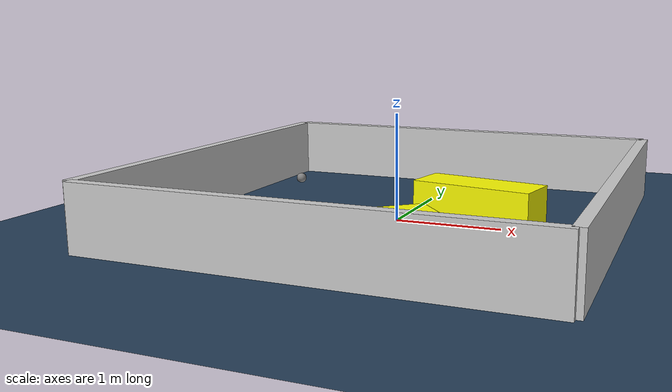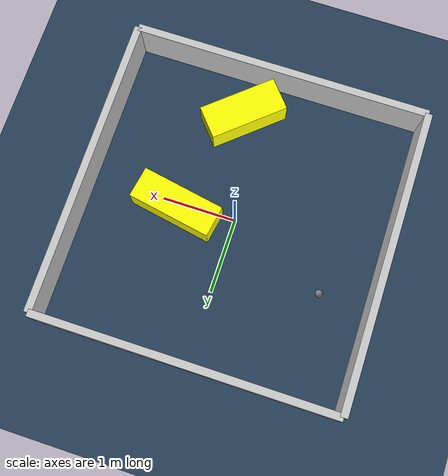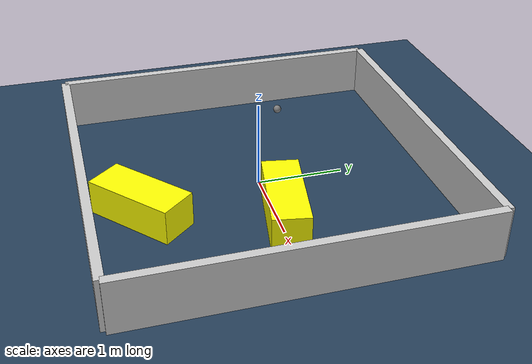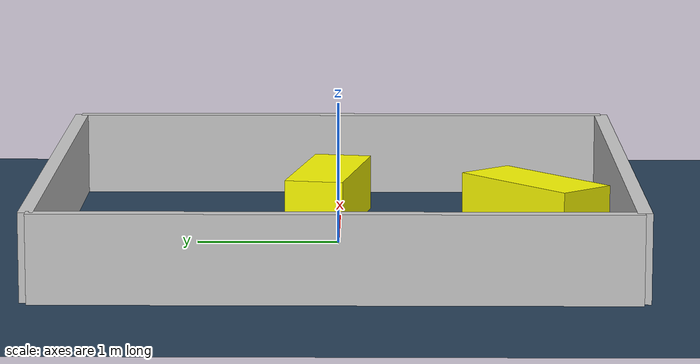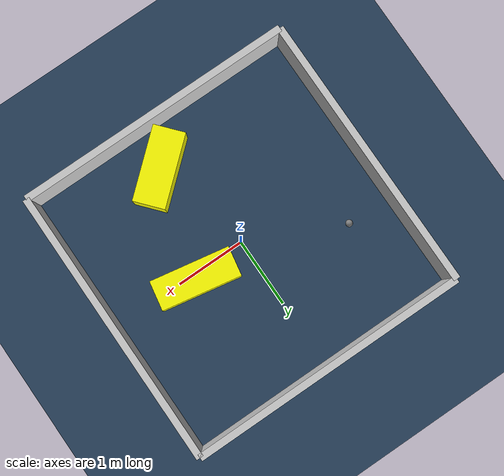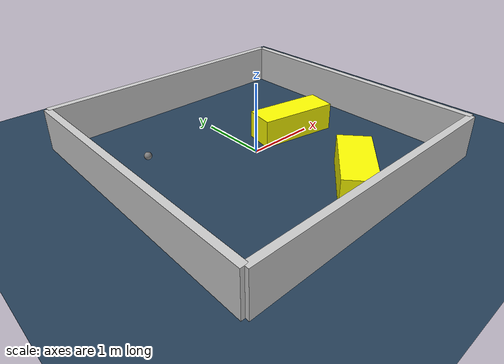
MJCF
<?xml version="1.0" ?>
<mujoco model="generated_environment">
  <option timestep="0.01" integrator="RK4" cone="elliptic"/>
  <default>
    <geom density="1"/>
  </default>
  <asset>
    <texture builtin="gradient" height="3072" rgb1="0.3 0.5 0.7" rgb2="0 0 0" type="skybox" width="512"/>
    <texture builtin="checker" height="300" mark="edge" markrgb="0.8 0.8 0.8" name="groundplane" rgb1="0.2 0.3 0.4" rgb2="0.1 0.2 0.3" type="2d" width="300"/>
    <material name="groundplane" reflectance="0.2" texrepeat="5 5" texture="groundplane" texuniform="true"/>
    <material name="robot" rgba="0.0 1.0 0.0 1"/>
  </asset>
  <worldbody>
    <light dir="0 0 -1" directional="true" pos="0 0 1.5"/>
    <geom condim="4" friction="1.0 0.005 0.001" material="groundplane" name="floor" size="0 0 0.05" type="plane"/>
    <body name="walls">
      <geom name="wall_1" condim="4" pos="-2.0 0.0 0.3" rgba="0.800000011920929 0.800000011920929 0.800000011920929 1.0" size="0.05 2.0 0.3" type="box"/>
      <geom name="wall_2" condim="4" pos="2.0 0.0 0.3" rgba="0.800000011920929 0.800000011920929 0.800000011920929 1.0" size="0.05 2.0 0.3" type="box"/>
      <geom name="wall_3" condim="4" pos="0.0 -2.0 0.3" rgba="0.800000011920929 0.800000011920929 0.800000011920929 1.0" size="2.0 0.05 0.3" type="box"/>
      <geom name="wall_4" condim="4" pos="0.0 2.0 0.3" rgba="0.800000011920929 0.800000011920929 0.800000011920929 1.0" size="2.0 0.05 0.3" type="box"/>
    </body>
    <body name="robot">
      <joint name="joint_x" type="slide" pos="0 0 0" axis="1 0 0"/>
      <joint name="joint_y" type="slide" pos="0 0 0" axis="0 1 0"/>
      <geom name="robot" type="sphere" pos="-1.3300303184463065 0.6189064823206061 0.2" size="0.05" mass="5." friction="1.0 0.005 0.0001" condim="4"/>
      <site name="sensor_ball"/>
    </body>
    <body name="obstacle_1_movable">
      <geom name="obstacle_1_movable" condim="4" pos="0.771102513384081 0.07844627576761876 0.2" euler="0 0 169.6718933354186" friction="1.0 0.005 0.001" rgba="1 1 0 1" size="0.566387320763615 0.2108227343575444 0.2" type="box" mass="0.1"/>
      <joint type="free"/>
    </body>
    <body name="obstacle_2_movable">
      <geom name="obstacle_2_movable" condim="4" pos="0.33648003907892865 -1.4138887700992662 0.2" euler="0 0 310.8462949195078" friction="1.0 0.005 0.001" rgba="1 1 0 1" size="0.22590722076624936 0.5310794195735808 0.2" type="box" mass="0.1"/>
      <joint type="free"/>
    </body>
  </worldbody>
  <actuator>
    <motor name="actuator_x" joint="joint_x" gear="1" ctrlrange="-1 1"/>
    <motor name="actuator_y" joint="joint_y" gear="1" ctrlrange="-1 1"/>
  </actuator>
</mujoco>
